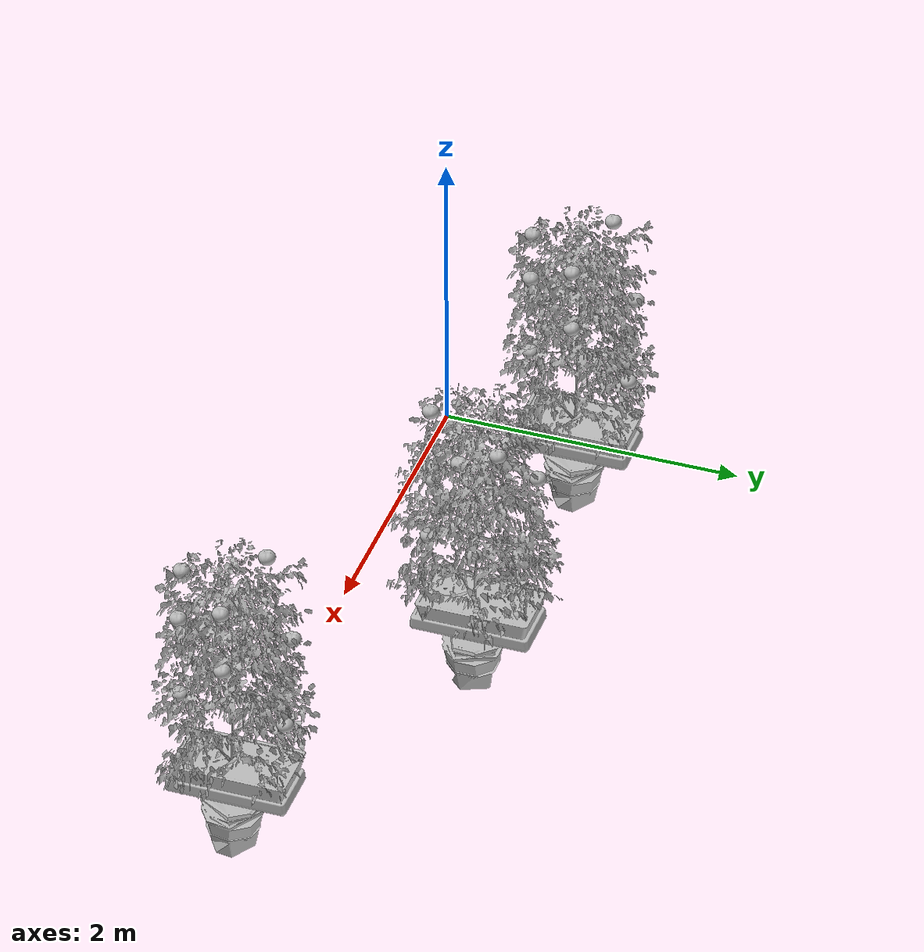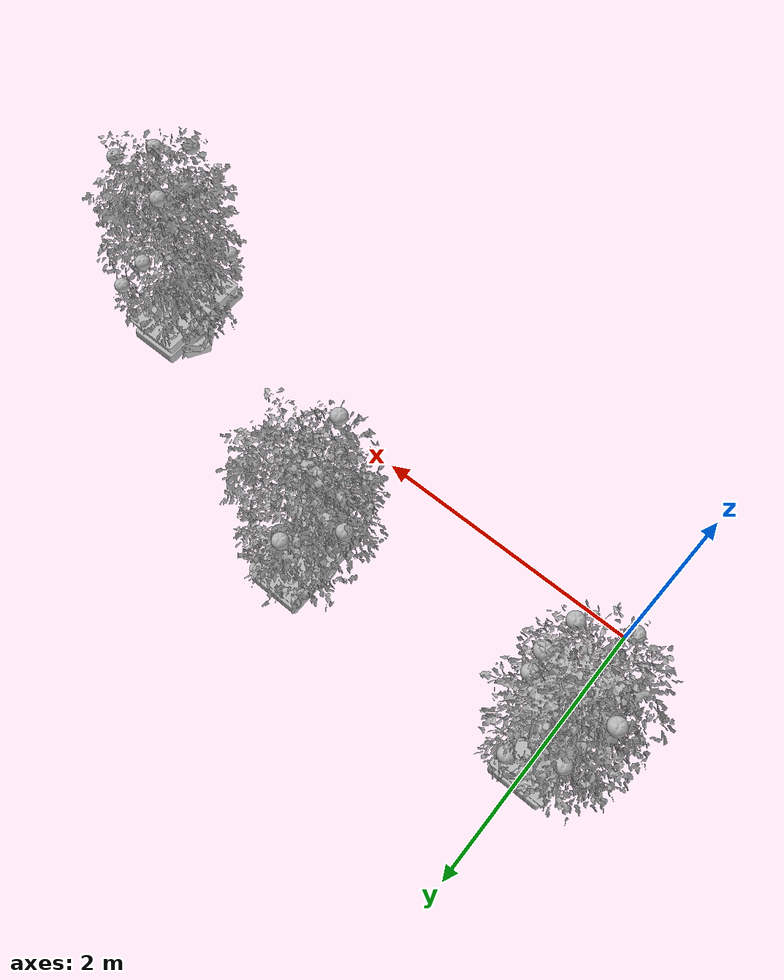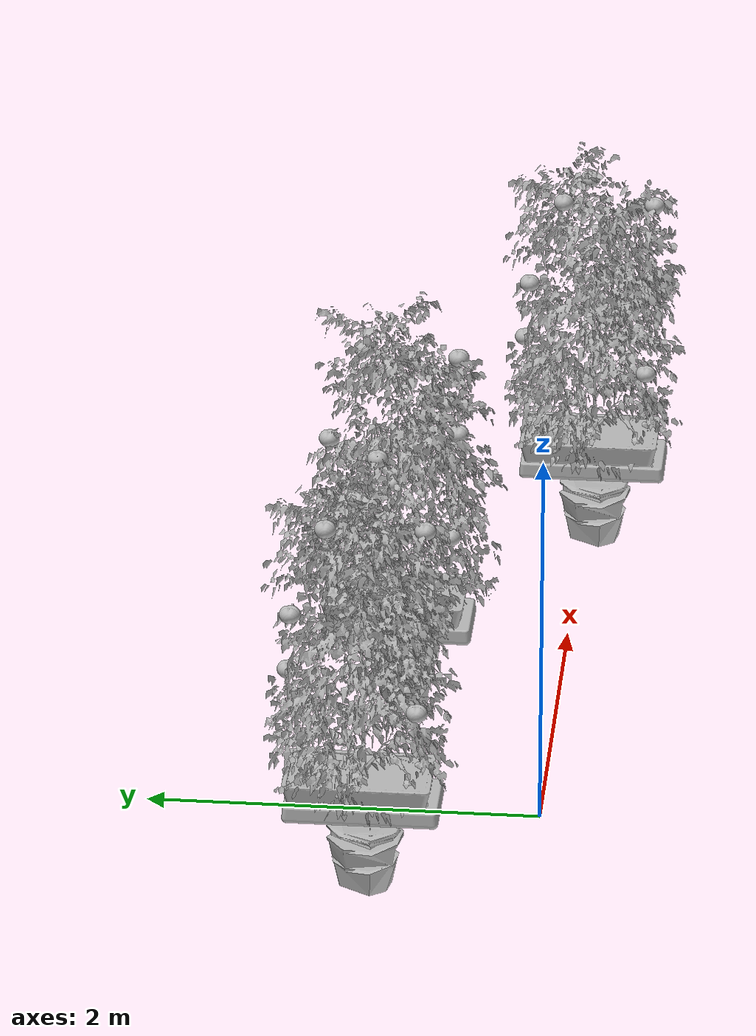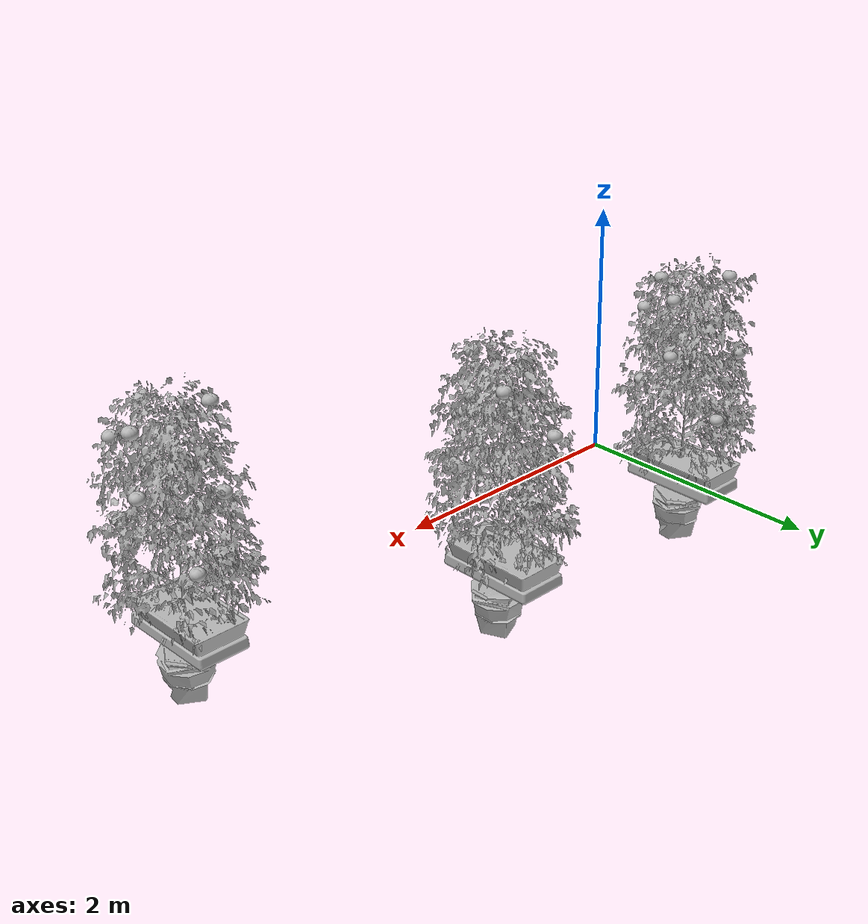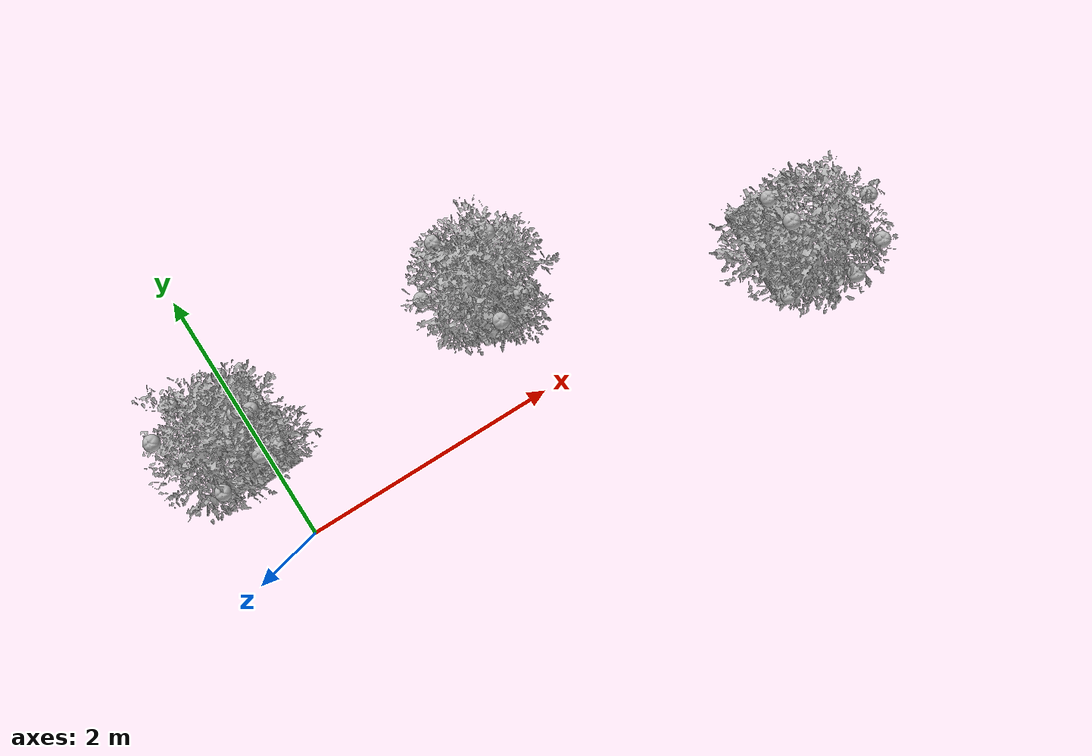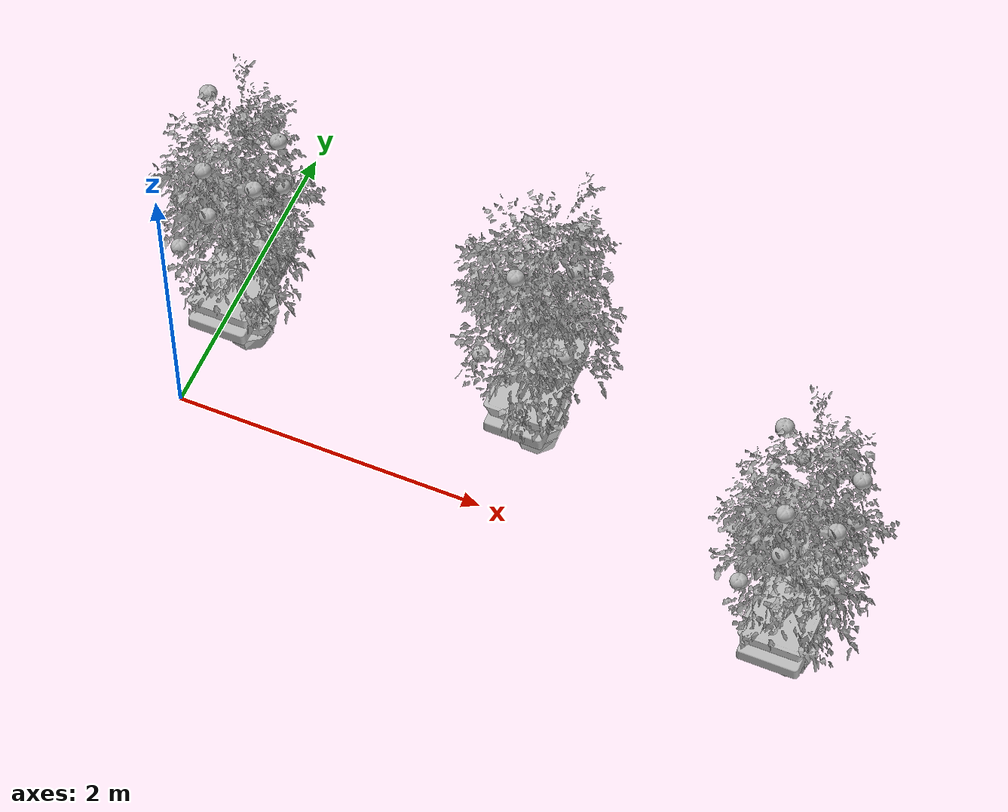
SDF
<sdf version="1.6">
 <world name="default">
  <model name="plant01">
   <static>1</static>
   <link name="plant_2::plant">
    <visual name="visual"><geometry><mesh><uri>model://plant/meshes/plant.obj</uri></mesh></geometry></visual>
    <collision name="collision"><geometry><box><size>0.1 0.1 0.1</size></box></geometry></collision>
    <pose>0 0 -0.45 0 -0 0.338594</pose>
   </link>
   <link name="trough::trough_link">
    <visual name="visual"><geometry><mesh><uri>model://trough/meshes/truf.obj</uri></mesh></geometry></visual>
    <collision name="collision">
     <geometry><mesh><uri>model://trough/meshes/truf.obj</uri></mesh></geometry>
    </collision>
    <pose>0 0 0 1.57 -0 0</pose>
   </link>
   <link name="tomato_20::tomato_link">
    <visual name="visual"><geometry><mesh><uri>model://tomato/meshes/tomato.obj</uri></mesh></geometry></visual>
    <collision name="collision">
     <geometry><mesh><uri>model://tomato/meshes/tomato.obj</uri></mesh></geometry>
    </collision>
    <pose>-0.297 0.244 0.695 0 -0 0</pose>
   </link>
   <link name="tomato_21::tomato_link">
    <visual name="visual"><geometry><mesh><uri>model://tomato/meshes/tomato.obj</uri></mesh></geometry></visual>
    <collision name="collision">
     <geometry><mesh><uri>model://tomato/meshes/tomato.obj</uri></mesh></geometry>
    </collision>
    <pose>0.164 0.199 1.684 0 -0 0</pose>
   </link>
   <link name="tomato_22::tomato_link">
    <visual name="visual"><geometry><mesh><uri>model://tomato/meshes/tomato.obj</uri></mesh></geometry></visual>
    <collision name="collision">
     <geometry><mesh><uri>model://tomato/meshes/tomato.obj</uri></mesh></geometry>
    </collision>
    <pose>0.394 -0.151 0.705 0 -0 0</pose>
   </link>
   <link name="tomato_23::tomato_link">
    <visual name="visual"><geometry><mesh><uri>model://tomato/meshes/tomato.obj</uri></mesh></geometry></visual>
    <collision name="collision">
     <geometry><mesh><uri>model://tomato/meshes/tomato.obj</uri></mesh></geometry>
    </collision>
    <pose>0.054 -0.308 1.158 0 -0 0</pose>
   </link>
   <link name="tomato_24::tomato_link">
    <visual name="visual"><geometry><mesh><uri>model://tomato/meshes/tomato.obj</uri></mesh></geometry></visual>
    <collision name="collision">
     <geometry><mesh><uri>model://tomato/meshes/tomato.obj</uri></mesh></geometry>
    </collision>
    <pose>-0.236 -0.275 0.883 0 -0 0</pose>
   </link>
   <link name="tomato_25::tomato_link">
    <visual name="visual"><geometry><mesh><uri>model://tomato/meshes/tomato.obj</uri></mesh></geometry></visual>
    <collision name="collision">
     <geometry><mesh><uri>model://tomato/meshes/tomato.obj</uri></mesh></geometry>
    </collision>
    <pose>-0.318 0.01 1.158 0 -0 0</pose>
   </link>
   <link name="tomato_26::tomato_link">
    <visual name="visual"><geometry><mesh><uri>model://tomato/meshes/tomato.obj</uri></mesh></geometry></visual>
    <collision name="collision">
     <geometry><mesh><uri>model://tomato/meshes/tomato.obj</uri></mesh></geometry>
    </collision>
    <pose>0.351 0.12 1.158 0 -0 0</pose>
   </link>
   <link name="tomato_27::tomato_link">
    <visual name="visual"><geometry><mesh><uri>model://tomato/meshes/tomato.obj</uri></mesh></geometry></visual>
    <collision name="collision">
     <geometry><mesh><uri>model://tomato/meshes/tomato.obj</uri></mesh></geometry>
    </collision>
    <pose>0.054 -0.308 1.599 0 -0 0</pose>
   </link>
   <link name="tomato_28::tomato_link">
    <visual name="visual"><geometry><mesh><uri>model://tomato/meshes/tomato.obj</uri></mesh></geometry></visual>
    <collision name="collision">
     <geometry><mesh><uri>model://tomato/meshes/tomato.obj</uri></mesh></geometry>
    </collision>
    <pose>-0.236 -0.275 1.464 0 -0 0</pose>
   </link>
   <link name="tomato_29::tomato_link">
    <visual name="visual"><geometry><mesh><uri>model://tomato/meshes/tomato.obj</uri></mesh></geometry></visual>
    <collision name="collision">
     <geometry><mesh><uri>model://tomato/meshes/tomato.obj</uri></mesh></geometry>
    </collision>
    <pose>-0.318 0.01 1.599 0 -0 0</pose>
   </link>
   <pose>0 0.9 -0 0 -0 1.57</pose>
  </model>
  <model name="plant11">
   <static>1</static>
   <link name="plant_4::plant">
    <visual name="visual"><geometry><mesh><uri>model://plant/meshes/plant.obj</uri></mesh></geometry></visual>
    <collision name="collision"><geometry><box><size>0.1 0.1 0.1</size></box></geometry></collision>
    <pose>0 0 -0.45 0 0 -0.277507</pose>
   </link>
   <link name="trough::trough_link">
    <visual name="visual"><geometry><mesh><uri>model://trough/meshes/truf.obj</uri></mesh></geometry></visual>
    <collision name="collision">
     <geometry><mesh><uri>model://trough/meshes/truf.obj</uri></mesh></geometry>
    </collision>
    <pose>0 0 0 1.57 -0 0</pose>
   </link>
   <link name="tomato_40::tomato_link">
    <visual name="visual"><geometry><mesh><uri>model://tomato/meshes/tomato.obj</uri></mesh></geometry></visual>
    <collision name="collision">
     <geometry><mesh><uri>model://tomato/meshes/tomato.obj</uri></mesh></geometry>
    </collision>
    <pose>-0.297 0.244 0.669 0 -0 0</pose>
   </link>
   <link name="tomato_41::tomato_link">
    <visual name="visual"><geometry><mesh><uri>model://tomato/meshes/tomato.obj</uri></mesh></geometry></visual>
    <collision name="collision">
     <geometry><mesh><uri>model://tomato/meshes/tomato.obj</uri></mesh></geometry>
    </collision>
    <pose>0.073 0.375 1.175 0 -0 0</pose>
   </link>
   <link name="tomato_42::tomato_link">
    <visual name="visual"><geometry><mesh><uri>model://tomato/meshes/tomato.obj</uri></mesh></geometry></visual>
    <collision name="collision">
     <geometry><mesh><uri>model://tomato/meshes/tomato.obj</uri></mesh></geometry>
    </collision>
    <pose>0.196 -0.202 1.528 0 -0 0</pose>
   </link>
   <link name="tomato_43::tomato_link">
    <visual name="visual"><geometry><mesh><uri>model://tomato/meshes/tomato.obj</uri></mesh></geometry></visual>
    <collision name="collision">
     <geometry><mesh><uri>model://tomato/meshes/tomato.obj</uri></mesh></geometry>
    </collision>
    <pose>0.054 -0.237 0.732 0 -0 0</pose>
   </link>
   <link name="tomato_44::tomato_link">
    <visual name="visual"><geometry><mesh><uri>model://tomato/meshes/tomato.obj</uri></mesh></geometry></visual>
    <collision name="collision">
     <geometry><mesh><uri>model://tomato/meshes/tomato.obj</uri></mesh></geometry>
    </collision>
    <pose>-0.236 -0.275 0.851 0 -0 0</pose>
   </link>
   <link name="tomato_45::tomato_link">
    <visual name="visual"><geometry><mesh><uri>model://tomato/meshes/tomato.obj</uri></mesh></geometry></visual>
    <collision name="collision">
     <geometry><mesh><uri>model://tomato/meshes/tomato.obj</uri></mesh></geometry>
    </collision>
    <pose>-0.318 0.01 1.158 0 -0 0</pose>
   </link>
   <link name="tomato_46::tomato_link">
    <visual name="visual"><geometry><mesh><uri>model://tomato/meshes/tomato.obj</uri></mesh></geometry></visual>
    <collision name="collision">
     <geometry><mesh><uri>model://tomato/meshes/tomato.obj</uri></mesh></geometry>
    </collision>
    <pose>0.351 0.12 1.158 0 -0 0</pose>
   </link>
   <link name="tomato_47::tomato_link">
    <visual name="visual"><geometry><mesh><uri>model://tomato/meshes/tomato.obj</uri></mesh></geometry></visual>
    <collision name="collision">
     <geometry><mesh><uri>model://tomato/meshes/tomato.obj</uri></mesh></geometry>
    </collision>
    <pose>-0.039 -0.257 1.451 0 -0 0</pose>
   </link>
   <link name="tomato_48::tomato_link">
    <visual name="visual"><geometry><mesh><uri>model://tomato/meshes/tomato.obj</uri></mesh></geometry></visual>
    <collision name="collision">
     <geometry><mesh><uri>model://tomato/meshes/tomato.obj</uri></mesh></geometry>
    </collision>
    <pose>-0.236 -0.189 1.233 0 -0 0</pose>
   </link>
   <link name="tomato_49::tomato_link">
    <visual name="visual"><geometry><mesh><uri>model://tomato/meshes/tomato.obj</uri></mesh></geometry></visual>
    <collision name="collision">
     <geometry><mesh><uri>model://tomato/meshes/tomato.obj</uri></mesh></geometry>
    </collision>
    <pose>-0.318 0.01 1.599 0 -0 0</pose>
   </link>
   <pose>2 0.9 0 0 -0 1.57</pose>
  </model>
  <model name="plant20">
   <static>1</static>
   <link name="plant_2::plant">
    <visual name="visual"><geometry><mesh><uri>model://plant/meshes/plant.obj</uri></mesh></geometry></visual>
    <collision name="collision"><geometry><box><size>0.1 0.1 0.1</size></box></geometry></collision>
    <pose>0 0 -0.45 0 -0 0.338594</pose>
   </link>
   <link name="trough::trough_link">
    <visual name="visual"><geometry><mesh><uri>model://trough/meshes/truf.obj</uri></mesh></geometry></visual>
    <collision name="collision">
     <geometry><mesh><uri>model://trough/meshes/truf.obj</uri></mesh></geometry>
    </collision>
    <pose>0 0 0 1.57 -0 0</pose>
   </link>
   <link name="tomato_20::tomato_link">
    <visual name="visual"><geometry><mesh><uri>model://tomato/meshes/tomato.obj</uri></mesh></geometry></visual>
    <collision name="collision">
     <geometry><mesh><uri>model://tomato/meshes/tomato.obj</uri></mesh></geometry>
    </collision>
    <pose>-0.297 0.244 0.695 0 -0 0</pose>
   </link>
   <link name="tomato_21::tomato_link">
    <visual name="visual"><geometry><mesh><uri>model://tomato/meshes/tomato.obj</uri></mesh></geometry></visual>
    <collision name="collision">
     <geometry><mesh><uri>model://tomato/meshes/tomato.obj</uri></mesh></geometry>
    </collision>
    <pose>0.164 0.199 1.684 0 -0 0</pose>
   </link>
   <link name="tomato_22::tomato_link">
    <visual name="visual"><geometry><mesh><uri>model://tomato/meshes/tomato.obj</uri></mesh></geometry></visual>
    <collision name="collision">
     <geometry><mesh><uri>model://tomato/meshes/tomato.obj</uri></mesh></geometry>
    </collision>
    <pose>0.394 -0.151 0.705 0 -0 0</pose>
   </link>
   <link name="tomato_23::tomato_link">
    <visual name="visual"><geometry><mesh><uri>model://tomato/meshes/tomato.obj</uri></mesh></geometry></visual>
    <collision name="collision">
     <geometry><mesh><uri>model://tomato/meshes/tomato.obj</uri></mesh></geometry>
    </collision>
    <pose>0.054 -0.308 1.158 0 -0 0</pose>
   </link>
   <link name="tomato_24::tomato_link">
    <visual name="visual"><geometry><mesh><uri>model://tomato/meshes/tomato.obj</uri></mesh></geometry></visual>
    <collision name="collision">
     <geometry><mesh><uri>model://tomato/meshes/tomato.obj</uri></mesh></geometry>
    </collision>
    <pose>-0.236 -0.275 0.883 0 -0 0</pose>
   </link>
   <link name="tomato_25::tomato_link">
    <visual name="visual"><geometry><mesh><uri>model://tomato/meshes/tomato.obj</uri></mesh></geometry></visual>
    <collision name="collision">
     <geometry><mesh><uri>model://tomato/meshes/tomato.obj</uri></mesh></geometry>
    </collision>
    <pose>-0.318 0.01 1.158 0 -0 0</pose>
   </link>
   <link name="tomato_26::tomato_link">
    <visual name="visual"><geometry><mesh><uri>model://tomato/meshes/tomato.obj</uri></mesh></geometry></visual>
    <collision name="collision">
     <geometry><mesh><uri>model://tomato/meshes/tomato.obj</uri></mesh></geometry>
    </collision>
    <pose>0.351 0.12 1.158 0 -0 0</pose>
   </link>
   <link name="tomato_27::tomato_link">
    <visual name="visual"><geometry><mesh><uri>model://tomato/meshes/tomato.obj</uri></mesh></geometry></visual>
    <collision name="collision">
     <geometry><mesh><uri>model://tomato/meshes/tomato.obj</uri></mesh></geometry>
    </collision>
    <pose>0.054 -0.308 1.599 0 -0 0</pose>
   </link>
   <link name="tomato_28::tomato_link">
    <visual name="visual"><geometry><mesh><uri>model://tomato/meshes/tomato.obj</uri></mesh></geometry></visual>
    <collision name="collision">
     <geometry><mesh><uri>model://tomato/meshes/tomato.obj</uri></mesh></geometry>
    </collision>
    <pose>-0.236 -0.275 1.464 0 -0 0</pose>
   </link>
   <link name="tomato_29::tomato_link">
    <visual name="visual"><geometry><mesh><uri>model://tomato/meshes/tomato.obj</uri></mesh></geometry></visual>
    <collision name="collision">
     <geometry><mesh><uri>model://tomato/meshes/tomato.obj</uri></mesh></geometry>
    </collision>
    <pose>-0.318 0.01 1.599 0 -0 0</pose>
   </link>
   <pose>4 0 -0 0 -0 1.57</pose>
  </model>
 </world>
</sdf>
